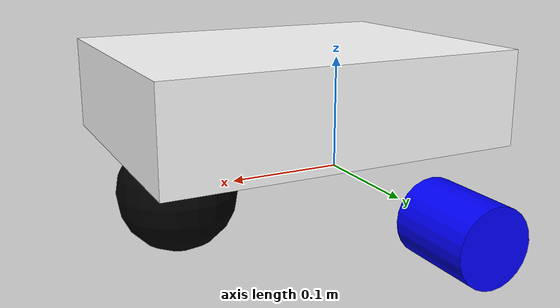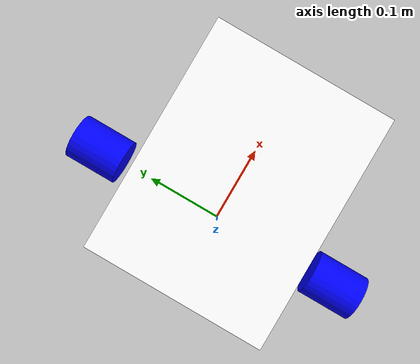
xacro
<?xml version="1.0"?>
<robot name="my_bot" xmlns:xacro="http://ros.org/wiki/xacro">

    <xacro:include filename="inertial_macros.xacro"/>

    <material name="white">
        <color rgba="1 1 1 1"/>
    </material>

    <material name="black">
        <color rgba="0 0 0 1"/>
    </material>

    <material name="red">
        <color rgba="1 0 0 1"/>
    </material>

    <material name="blue">
        <color rgba="0 0 1 1"/>
    </material>

    <!-- Base Link -->
    <link name = "base_link">
    </link>

    <joint name = "base_footprint_joint" type="fixed">
        <parent link="base_link"/>
        <child link="base_footprint"/>
        <origin xyz="0 0 0" rpy="0 0 0"/>
    </joint>

    <link name = "base_footprint">
    </link>

    <!-- Chassis Link -->
    <joint name = "chassis_joint" type="fixed">
        <parent link="base_link"/>
        <child link="chassis"/>
        <origin xyz="-0.1 0 0" rpy="0 0 0"/> <!-- behind the base link -->
    </joint>

    <link name = "chassis">
        <visual>
            <origin xyz="0.15 0.0 0.075"/>
            <geometry>
                <box size="0.3 0.23 0.08"/>
            </geometry>
            <material name="white"/>
        </visual>
        <collision>
            <origin xyz="0.15 0.0 0.075"/>
            <geometry>
                <box size="0.3 0.3 0.15"/>
            </geometry>
        </collision>
        <xacro:inertial_box mass="0.5" x = "0.3" y = "0.3" z = "0.15">
            <origin xyz="0.15 0 0.075" rpy = " 0 0 0" />
        </xacro:inertial_box>
    </link>

    <gazebo reference="chassis">
        <material>Gazebo/White</material>
    </gazebo>

    <!-- Left Wheel Joint -->
    <joint name = "left_wheel_joint" type = "continuous">
        <parent link = "base_link"/>
        <child link = "left_wheel"/>
        <origin xyz = "0 0.175 0" rpy = "-${pi/2} 0 0" />
        <axis xyz = "0 0 1"/>
    </joint>

    <!-- Left Wheel Link-->
    <link name = "left_wheel">
        <visual>
            <geometry>
                <cylinder radius="0.03" length="0.07"/>
            </geometry>
            <material name='blue' />
        </visual>
        <collision>
            <geometry>
                <cylinder radius="0.03" length="0.07"/>
            </geometry>
        </collision>
        <xacro:inertial_cylinder mass="0.1" length="0.04" radius="0.05">
            <origin xyz="0 0 0" rpy = "0 0 0" />
        </xacro:inertial_cylinder>
    </link>
    <gazebo reference="left_wheel">
        <material>Gazebo/Blue</material>
    </gazebo>

    <!-- Right Wheel Joint -->
    <joint name = "right_wheel_joint" type = "continuous">
        <parent link = "base_link"/>
        <child link = "right_wheel"/>
        <origin xyz = "0 -0.175 0" rpy = "${pi/2} 0 0" />
        <axis xyz = "0 0 -1"/>
    </joint>

    <!-- Right Wheel Link -->
    <link name = "right_wheel">
        <visual>
            <geometry>
                <cylinder radius="0.03" length="0.07"/>
            </geometry>
            <material name='blue' />
        </visual>
        <collision>
            <geometry>
                <cylinder radius="0.03" length="0.07"/>
            </geometry>
            <material name='blue' />
        </collision>
        <xacro:inertial_cylinder mass="0.1" length="0.04" radius="0.05">
            <origin xyz="0 0 0" rpy = "0 0 0" />
        </xacro:inertial_cylinder>
    </link>
    <gazebo reference="right_wheel">
        <material>Gazebo/Blue</material>
    </gazebo>

     <!-- caster Wheel Link -->
    <joint name = "caster_wheel_joint" type = "fixed">
        <parent link = "base_link" />
        <child link = "caster_wheel" />
        <origin xyz="0.15 0 0" rpy="0 0 0" />
    </joint>

    <link name="caster_wheel">
        <visual>
            <geometry>
                <sphere radius="0.05"/>
            </geometry>
            <material name='black' />
        </visual>
        <collision>
            <geometry>
                <sphere radius="0.05"/>
            </geometry>
            <material name='black' />
        </collision>
        <xacro:inertial_sphere mass="0.1" radius="0.05">
            <origin xyz="0 0 0" rpy = "0 0 0" />
        </xacro:inertial_sphere>
    </link>
    <gazebo reference="caster_wheel">
        <material>Gazebo/Black</material>
        <mu1 value="0.001"/>
        <mu2 value="0.001"/>
    </gazebo>
</robot>
